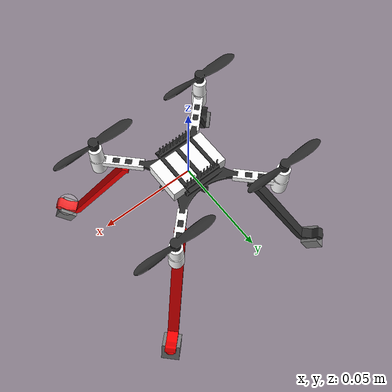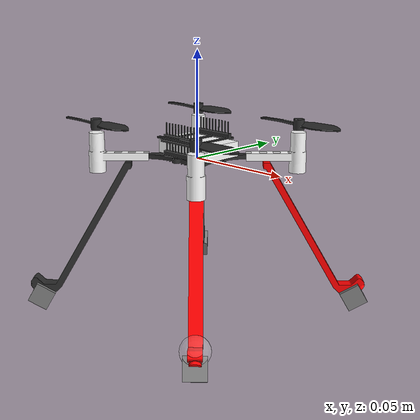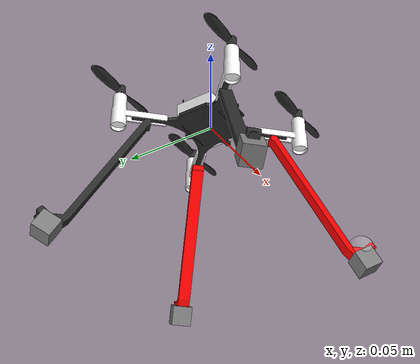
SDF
<?xml version='1.0'?>
<sdf version='1.7'>
  <model name='A30_L70'>

    <include>
      <uri>model://SAR_Base</uri>
    </include>

    <link name='Leg_1'>
      <pose>23.8e-3 -23.8e-3 -1.6e-3 0 1.0472 -0.785</pose>
      <inertial>
        <mass>2.40E-3</mass>
        <pose>5.19E-2 0 1.17E-3 0 0 0 </pose>
        <inertia>
          <ixx>6.73E-8</ixx>
          <ixy>0</ixy>
          <ixz>2.59E-7</ixz>
          <iyy>2.62E-6</iyy>
          <iyz>0</iyz>
          <izz>2.57E-6</izz>
        </inertia>
      </inertial>
      <gravity>1</gravity>
      <self_collide>1</self_collide>
      <visual name='Leg_Visual'>
        <pose>0 0 0 0 0 0</pose>
        <geometry>
          <mesh>
            <uri>model://Leg_Assemblies/meshes/Leg_Assembly_30_deg--70mm--Crazyflie.STL</uri>
            <scale>1 1 1</scale>
          </mesh>
        </geometry>
          <material>
              <!--Red-->
              <ambient>1.0 0.0 0.0 1</ambient>
              <diffuse>1.0 0.0 0.0 1</diffuse>
              <specular>0.1 0.1 0.1 1.0</specular>
          <lighting>1</lighting>
          </material>
      </visual>

      <visual name='Collision_Radius_1'>
        <pose>71.9e-3 0 5.3e-3 0 0 0</pose>
        <geometry>
          <sphere>
            <radius>6.5e-3</radius>
          </sphere>
        </geometry>
        <material>
        <ambient>1 1 1 0.2</ambient>
        <diffuse>1 1 1 0.2</diffuse>
        <lighting>1</lighting>
        </material>
      </visual>

      <collision name="Leg_Collision_1">
        <pose>71.9e-3 0 5.3e-3 0 0 0</pose>
        <geometry>
          <sphere>
            <radius>6.5e-3</radius>
          </sphere>
        </geometry>
      </collision>
      <self_collide>1</self_collide>
    </link>

    <link name='Leg_2'>
      <pose>-23.8e-3 -23.8e-3 -1.6e-3 0 1.0472 -2.35</pose>
      <inertial>
        <mass>2.40E-3</mass>
        <pose>5.19E-2 0 1.17E-3 0 0 0 </pose>
        <inertia>
          <ixx>6.73E-8</ixx>
          <ixy>0</ixy>
          <ixz>2.59E-7</ixz>
          <iyy>2.62E-6</iyy>
          <iyz>0</iyz>
          <izz>2.57E-6</izz>
        </inertia>
      </inertial>
      <gravity>1</gravity>
      <self_collide>1</self_collide>
      <visual name='Leg_Visual'>
        <pose>0 0 0 0 0 0</pose>
        <geometry>
          <mesh>
            <uri>model://Leg_Assemblies/meshes/Leg_Assembly_30_deg--70mm--Crazyflie.STL</uri>
            <scale>1 1 1</scale>
          </mesh>
        </geometry>
          <material>
              <!--DarkGrey-->
              <ambient>0.175 0.175 0.175 1</ambient>
              <diffuse>0.175 0.175 0.175 1</diffuse>
              <specular>0.175 0.175 0.175 1.00</specular>
          <lighting>1</lighting>
          </material>
      </visual>
      <collision name="Leg_Collision_2">
        <pose>71.9e-3 0 5.3e-3 0 0 0</pose>
        <geometry>
          <sphere>
            <radius>6.5e-3</radius>
          </sphere>
        </geometry>
      </collision>
      <self_collide>1</self_collide>
    </link>

    <link name='Leg_3'>
      <pose>-23.8e-3 23.8e-3 -1.6e-3 0 1.0472 2.35</pose>
      <inertial>
        <mass>2.40E-3</mass>
        <pose>5.19E-2 0 1.17E-3 0 0 0 </pose>
        <inertia>
          <ixx>6.73E-8</ixx>
          <ixy>0</ixy>
          <ixz>2.59E-7</ixz>
          <iyy>2.62E-6</iyy>
          <iyz>0</iyz>
          <izz>2.57E-6</izz>
        </inertia>
      </inertial>
      <gravity>1</gravity>
      <self_collide>1</self_collide>
      <visual name='Leg_Visual'>
        <pose>0 0 0 0 0 0</pose>
        <geometry>
          <mesh>
            <uri>model://Leg_Assemblies/meshes/Leg_Assembly_30_deg--70mm--Crazyflie.STL</uri>
            <scale>1 1 1</scale>
          </mesh>
        </geometry>
          <material>
              <!--DarkGrey-->
              <ambient>0.175 0.175 0.175 1</ambient>
              <diffuse>0.175 0.175 0.175 1</diffuse>
              <specular>0.175 0.175 0.175 1.00</specular>
          <lighting>1</lighting>
          </material>
      </visual>
      <collision name="Leg_Collision_3">
        <pose>71.9e-3 0 5.3e-3 0 0 0</pose>
        <geometry>
          <sphere>
            <radius>6.5e-3</radius>
          </sphere>
        </geometry>
      </collision>
      <self_collide>1</self_collide>
    </link>

    <link name='Leg_4'>
      <pose>23.8e-3 23.8e-3 -1.6e-3 0 1.0472 0.785</pose>
      <inertial>
        <mass>2.40E-3</mass>
        <pose>5.19E-2 0 1.17E-3 0 0 0 </pose>
        <inertia>
          <ixx>6.73E-8</ixx>
          <ixy>0</ixy>
          <ixz>2.59E-7</ixz>
          <iyy>2.62E-6</iyy>
          <iyz>0</iyz>
          <izz>2.57E-6</izz>
        </inertia>
      </inertial>
      <gravity>1</gravity>
      <self_collide>1</self_collide>
      <visual name='Leg_Visual'>
        <pose>0 0 0 0 0 0</pose>
        <geometry>
          <mesh>
            <uri>model://Leg_Assemblies/meshes/Leg_Assembly_30_deg--70mm--Crazyflie.STL</uri>
            <scale>1 1 1</scale>
          </mesh>
        </geometry>
          <material>
              <!--Red-->
              <ambient>1.0 0.0 0.0 1</ambient>
              <diffuse>1.0 0.0 0.0 1</diffuse>
              <specular>0.1 0.1 0.1 1.0</specular>
          <lighting>1</lighting>
          </material>
      </visual>
      <collision name="Leg_Collision_4">
        <pose>71.9e-3 0 5.3e-3 0 0 0</pose>
        <geometry>
          <sphere>
            <radius>6.5e-3</radius>
          </sphere>
        </geometry>
      </collision>
      <self_collide>1</self_collide>
    </link>
    <link name="Leg_Tip_1">
      <pose>53.5e-3 -53.5e-3 -68.2e-3 0 1.0472 -0.785</pose>
      <inertial>
        <mass>0.10E-3</mass>
      </inertial>
      <gravity>1</gravity>
      <self_collide>1</self_collide>
      <collision name="Leg_Collision_Tip_1">
        <geometry>
          <box>
            <size>0.01 0.01 0.01</size>
          </box>
        </geometry>
      </collision>
      <visual name="Leg_Tip_Visual_1">
        <geometry>
          <box>
            <size>0.01 0.01 0.01</size>
          </box>
        </geometry>
        <material>
          <ambient>0.5 0.5 0.5 1</ambient>
          <diffuse>0.5 0.5 0.5 1</diffuse>
          <specular>0.5 0.5 0.5 1</specular>
        </material>
      </visual>
      <sensor name='contact_sensor' type='contact'>
          <contact>
              <collision>Leg_Collision_Tip_1</collision>
              <topic>/SAR_Internal/Leg_Connections_1</topic>
          </contact>
          <always_on>1</always_on>
          <update_rate>100</update_rate>
      </sensor>
      <self_collide>1</self_collide>
    </link>

    <link name="Leg_Tip_2">
      <pose>-53.5e-3 -53.5e-3 -68.2e-3 0 1.0472 -2.35</pose>
      <inertial>
        <mass>0.10E-3</mass>
      </inertial>
      <gravity>1</gravity>
      <self_collide>1</self_collide>
      <collision name="Leg_Collision_Tip_2">
        <geometry>
          <box>
            <size>0.01 0.01 0.01</size>
          </box>
        </geometry>
      </collision>
      <visual name="Leg_Tip_Visual_2">
        <geometry>
          <box>
            <size>0.01 0.01 0.01</size>
          </box>
        </geometry>
        <material>
          <ambient>0.5 0.5 0.5 1</ambient>
          <diffuse>0.5 0.5 0.5 1</diffuse>
          <specular>0.5 0.5 0.5 1</specular>
        </material>
      </visual>
      <sensor name='contact_sensor' type='contact'>
          <contact>
              <collision>Leg_Collision_Tip_2</collision>
              <topic>/SAR_Internal/Leg_Connections_2</topic>
          </contact>
          <always_on>1</always_on>
          <update_rate>100</update_rate>
      </sensor>
      <self_collide>1</self_collide>
    </link>

    <link name="Leg_Tip_3">
      <pose>-53.5e-3 53.5e-3 -68.2e-3 0 1.0472 2.35</pose>
      <inertial>
        <mass>0.10E-3</mass>
      </inertial>
      <gravity>1</gravity>
      <self_collide>1</self_collide>
      <collision name="Leg_Collision_Tip_3">
        <geometry>
          <box>
            <size>0.01 0.01 0.01</size>
          </box>
        </geometry>
      </collision>
      <visual name="Leg_Tip_Visual_3">
        <geometry>
          <box>
            <size>0.01 0.01 0.01</size>
          </box>
        </geometry>
        <material>
          <ambient>0.5 0.5 0.5 1</ambient>
          <diffuse>0.5 0.5 0.5 1</diffuse>
          <specular>0.5 0.5 0.5 1</specular>
        </material>
      </visual>
      <sensor name='contact_sensor' type='contact'>
          <contact>
              <collision>Leg_Collision_Tip_3</collision>
              <topic>/SAR_Internal/Leg_Connections_3</topic>
          </contact>
          <always_on>1</always_on>
          <update_rate>100</update_rate>
      </sensor>
      <self_collide>1</self_collide>
    </link>

    <link name="Leg_Tip_4">
      <pose>53.5e-3 53.5e-3 -68.2e-3 0 1.0472 0.785</pose>
      <inertial>
        <mass>0.10E-3</mass>
      </inertial>
      <gravity>1</gravity>
      <self_collide>1</self_collide>
      <collision name="Leg_Collision_Tip_4">
        <geometry>
          <box>
            <size>0.01 0.01 0.01</size>
          </box>
        </geometry>
      </collision>
      <visual name="Leg_Tip_Visual_4">
        <geometry>
          <box>
            <size>0.01 0.01 0.01</size>
          </box>
        </geometry>
        <material>
          <ambient>0.5 0.5 0.5 1</ambient>
          <diffuse>0.5 0.5 0.5 1</diffuse>
          <specular>0.5 0.5 0.5 1</specular>
        </material>
      </visual>

      <sensor name='contact_sensor' type='contact'>
          <contact>
              <collision>Leg_Collision_Tip_4</collision>
              <topic>/SAR_Internal/Leg_Connections_4</topic>
          </contact>
          <always_on>1</always_on>
          <update_rate>100</update_rate>
      </sensor>
      <self_collide>1</self_collide>

    </link>

    <joint name='Hinge_1_Joint' type='universal'>
      <parent>SAR_Base::SAR_Body</parent>
      <child>Leg_1</child>
      <pose>0 0 0 0 0.5236 0</pose>
      <axis>
        <xyz>0 1 0</xyz>
        <limit>
          <lower>-1.0821</lower>
          <upper>0</upper>
        </limit>
        <dynamics>
          <spring_stiffness>0.5</spring_stiffness>
          <damping>0.15</damping>
        </dynamics>
      </axis>
      <axis2>
        <xyz>0 0 1</xyz>
        <limit>
          <lower>-0.3491</lower>
          <upper>0.3491</upper>
        </limit>
        <dynamics>
          <spring_stiffness>0.5</spring_stiffness>
          <damping>0.35</damping>
        </dynamics>
      </axis2>
    </joint>

    <joint name='Hinge_2_Joint' type='universal'>
      <parent>SAR_Base::SAR_Body</parent>
      <child>Leg_2</child>
      <pose>0 0 0 0 0.5236 0</pose>
      <axis>
        <xyz>0 1 0</xyz>
        <limit>
          <lower>-1.0821</lower>
          <upper>0</upper>
        </limit>
        <dynamics>
          <spring_stiffness>0.5</spring_stiffness>
          <damping>0.15</damping>
        </dynamics>
      </axis>
      <axis2>
        <xyz>0 0 1</xyz>
        <limit>
          <lower>-0.3491</lower>
          <upper>0.3491</upper>
        </limit>
        <dynamics>
          <spring_stiffness>0.5</spring_stiffness>
          <damping>0.35</damping>
        </dynamics>
      </axis2>
    </joint>

    <joint name='Hinge_3_Joint' type='universal'>
      <parent>SAR_Base::SAR_Body</parent>
      <child>Leg_3</child>
      <pose>0 0 0 0 0.5236 0</pose>
      <axis>
        <xyz>0 1 0</xyz>
        <limit>
          <lower>-1.0821</lower>
          <upper>0</upper>
        </limit>
        <dynamics>
          <spring_stiffness>0.5</spring_stiffness>
          <damping>0.15</damping>
        </dynamics>
      </axis>
      <axis2>
        <xyz>0 0 1</xyz>
        <limit>
          <lower>-0.3491</lower>
          <upper>0.3491</upper>
        </limit>
        <dynamics>
          <spring_stiffness>0.5</spring_stiffness>
          <damping>0.35</damping>
        </dynamics>
      </axis2>
    </joint>

    <joint name='Hinge_4_Joint' type='universal'>
      <parent>SAR_Base::SAR_Body</parent>
      <child>Leg_4</child>
      <pose>0 0 0 0 0.5236 0</pose>
      <axis>
        <xyz>0 1 0</xyz>
        <limit>
          <lower>-1.0821</lower>
          <upper>0</upper>
        </limit>
        <dynamics>
          <spring_stiffness>0.5</spring_stiffness>
          <damping>0.15</damping>
        </dynamics>
      </axis>
      <axis2>
        <xyz>0 0 1</xyz>
        <limit>
          <lower>-0.3491</lower>
          <upper>0.3491</upper>
        </limit>
        <dynamics>
          <spring_stiffness>0.5</spring_stiffness>
          <damping>0.35</damping>
        </dynamics>
      </axis2>
    </joint>
    <joint name="Leg1_Ball_Joint" type="ball">
      <parent>Leg_1</parent>
      <child>Leg_Tip_1</child>
      <pose>0 0 0 0 0 0</pose>
      <axis>
        <xyz>1 0 0</xyz>
        <limit>
          <lower>-1e16</lower>
          <upper>1e16</upper>
        </limit>
        <dynamics>
          <damping>0.01</damping>
        </dynamics>
      </axis>
    </joint>

    <joint name="Leg2_Ball_Joint" type="ball">
      <parent>Leg_2</parent>
      <child>Leg_Tip_2</child>
      <pose>0 0 0 0 0 0</pose>
      <axis>
        <xyz>1 0 0</xyz>
        <limit>
          <lower>-1e16</lower>
          <upper>1e16</upper>
        </limit>
        <dynamics>
          <damping>0.01</damping>
        </dynamics>
      </axis>
    </joint>

    <joint name="Leg3_Ball_Joint" type="ball">
      <parent>Leg_3</parent>
      <child>Leg_Tip_3</child>
      <pose>0 0 0 0 0 0</pose>
      <axis>
        <xyz>1 0 0</xyz>
        <limit>
          <lower>-1e16</lower>
          <upper>1e16</upper>
        </limit>
        <dynamics>
          <damping>0.01</damping>
        </dynamics>
      </axis>
    </joint>

    <joint name="Leg4_Ball_Joint" type="ball">
      <parent>Leg_4</parent>
      <child>Leg_Tip_4</child>
      <pose>0 0 0 0 0 0</pose>
      <axis>
        <xyz>1 0 0</xyz>
        <limit>
          <lower>-1e16</lower>
          <upper>1e16</upper>
        </limit>
        <dynamics>
          <damping>0.01</damping>
        </dynamics>
      </axis>
    </joint>

    <plugin
        filename="/home/dlee/ros2_ws/install/sar_gazebo/lib/libSticky_Leg_Plugin.so"
        name="gz::sim::systems::Sticky_Leg_Plugin">
      <LegNumber>1</LegNumber>
      <LinkName>Leg_Tip_1</LinkName>
      <CollisionName>Leg_Collision_1</CollisionName>
      <JointName>Leg_1_Contact_Joint</JointName>

      <child_model>A30_L25</child_model>
      <child_link>Leg_Tip_1</child_link>
    </plugin>

    <plugin
        filename="/home/dlee/ros2_ws/install/sar_gazebo/lib/libSticky_Leg_Plugin.so"
        name="gz::sim::systems::Sticky_Leg_Plugin">
      <LegNumber>2</LegNumber>
      <LinkName>Leg_Tip_2</LinkName>
      <CollisionName>Leg_Collision_2</CollisionName>
      <JointName>Leg_2_Contact_Joint</JointName>

      <child_model>A30_L25</child_model>
      <child_link>Leg_Tip_2</child_link>
    </plugin>

    <plugin
        filename="/home/dlee/ros2_ws/install/sar_gazebo/lib/libSticky_Leg_Plugin.so"
        name="gz::sim::systems::Sticky_Leg_Plugin">
      <LegNumber>3</LegNumber>
      <LinkName>Leg_Tip_3</LinkName>
      <CollisionName>Leg_Collision_3</CollisionName>
      <JointName>Leg_3_Contact_Joint</JointName>

      <child_model>A30_L25</child_model>
      <child_link>Leg_Tip_3</child_link>
    </plugin>

    <plugin
        filename="/home/dlee/ros2_ws/install/sar_gazebo/lib/libSticky_Leg_Plugin.so"
        name="gz::sim::systems::Sticky_Leg_Plugin">
      <LegNumber>4</LegNumber>
      <LinkName>Leg_Tip_4</LinkName>
      <CollisionName>Leg_Collision4</CollisionName>
      <JointName>Leg_4_Contact_Joint</JointName>

      <child_model>A30_L70</child_model>
      <child_link>Leg_Tip_4</child_link>
    </plugin>

    <static>0</static>
    <allow_auto_disable>1</allow_auto_disable>
  </model>
</sdf>

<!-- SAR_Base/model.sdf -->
<sdf version='1.7'>
  <model name='SAR_Base' canonical_link='SAR_Body'>
    <pose>0 0 0 0 0 0</pose>   <!--the pose is relative to the world by default-->

    <!--SAR_Body-->
    <link name='SAR_Body'>
        <pose>0 0 0 0 0 0</pose>
        <inertial> <!--inertial properties of the link mass, inertia matix-->
            <mass>37.0e-3</mass>
            <inertia>
                <ixx>17.20e-6</ixx>
                <ixy>0</ixy>
                <ixz>0</ixz>
                <iyy>17.70e-6</iyy>
                <iyz>0</iyz>
                <izz>34.20e-6</izz>
            </inertia>
            <pose>0 0 0 0 0 0</pose>
        </inertial>
        <pose>0 0 0 0 0 0</pose>
        <gravity>1</gravity>
        <self_collide>0</self_collide>
        <kinematic>0</kinematic>
        <enable_wind>0</enable_wind>

        <sensor name="imu" type="imu">
        <always_on>1</always_on>
        <update_rate>100</update_rate>
        <visualize>true</visualize>
        <topic>imu</topic>
        <enable_metrics>true</enable_metrics>
        </sensor>

        <visual name='Crazyflie_Base_Assembly'>
            <pose>0 0 0 0 0 0</pose>
            <geometry>
            <mesh>
                <uri>model://SAR_Base/meshes/Crazyflie_Base_Body.STL</uri>
                <scale>1 1 1</scale>
            </mesh>
            </geometry>
            <material>
                <!--DarkGrey-->
                <ambient>0.175 0.175 0.175 1</ambient>
                <diffuse>0.175 0.175 0.175 1</diffuse>
                <specular>0.175 0.175 0.175 1.00</specular>
            <lighting>1</lighting>
            </material>
        </visual>

        <visual name='Crazyflie_Motor_Arms'>
            <pose>0 0 0 0 0 0</pose>
            <geometry>
            <mesh>
                <uri>model://SAR_Base/meshes/Crazyflie_Motor_Arms.STL</uri>
                <scale>1 1 1</scale>
            </mesh>
            </geometry>
            <material>
                <!--White-->
                <ambient>1 1 1 1</ambient>
                <diffuse>1 1 1 1</diffuse>
                <specular>0.1 0.1 0.1 0.128</specular>
            <lighting>1</lighting>
            </material>
        </visual>

        <collision name='Body_Collision_Prop_1'>
            <pose>33.0e-3 -33.0e-3 9.25e-3 0 0 0</pose>
            <geometry>
            <cylinder>
                <length>18.5e-3</length>
                <radius>23.0e-3</radius>
            </cylinder>
            </geometry>
        </collision>

        <collision name='Body_Collision_Prop_2'>
            <pose>-33.0e-3 -33.0e-3 9.25e-3 0 0 0</pose>
            <geometry>
            <cylinder>
                <length>18.5e-3</length>
                <radius>23.0e-3</radius>
            </cylinder>
            </geometry>
        </collision>

        <collision name='Body_Collision_Prop_3'>
            <pose>-33.0e-3 33.0e-3 9.25e-3 0 0 0</pose>
            <geometry>
            <cylinder>
                <length>18.5e-3</length>
                <radius>23.0e-3</radius>
            </cylinder>
            </geometry>
        </collision>

        <collision name='Body_Collision_Prop_4'>
            <pose>33.0e-3 33.0e-3 9.25e-3 0 0 0</pose>
            <geometry>
            <cylinder>
                <length>18.5e-3</length>
                <radius>23.0e-3</radius>
            </cylinder>
            </geometry>
        </collision>

    </link>

    <link name='Prop_1'>
        <inertial>
            <mass>1e-6</mass>
            <inertia>
                <ixx>1e-6</ixx>
                <ixy>0</ixy>
                <ixz>0</ixz>
                <iyy>1e-6</iyy>
                <iyz>0</iyz>
                <izz>1e-6</izz>
            </inertia>
            <pose>0 0 0 0 0 0</pose>
        </inertial>
        <pose>33.0e-3 -33.0e-3 16.0e-3 0 0 0</pose>
        <gravity>1</gravity>
        <self_collide>0</self_collide>
        <visual name='Crazyflie_Propeller_1'>
            <pose>0 0 0 0 0 0</pose>
            <geometry>
                <mesh>
                    <uri>model://SAR_Base/meshes/Crazyflie_Propeller.STL</uri>
                    <scale>1 1 1</scale>
                </mesh>
            </geometry>
            <material>
                <!--DarkGrey-->
                <ambient>0.175 0.175 0.175 1</ambient>
                <diffuse>0.175 0.175 0.175 1</diffuse>
                <specular>0.175 0.175 0.175 1.00</specular>
            <lighting>1</lighting>
            </material>
        </visual>
    </link>

    <link name='Prop_2'>
        <inertial>
            <mass>1e-6</mass>
            <inertia>
                <ixx>1e-6</ixx>
                <ixy>0</ixy>
                <ixz>0</ixz>
                <iyy>1e-6</iyy>
                <iyz>0</iyz>
                <izz>1e-6</izz>
            </inertia>
            <pose>0 0 0 0 0 0</pose>
        </inertial>
        <pose>-33.0e-3 -33.0e-3 16.0e-3 0 0 0</pose>
        <gravity>1</gravity>
        <self_collide>0</self_collide>
        <visual name='Crazyflie_Propeller_2'>
            <pose>0 0 0 0 0 0</pose>
            <geometry>
                <mesh>
                    <uri>model://SAR_Base/meshes/Crazyflie_Propeller.STL</uri>
                    <scale>1 1 1</scale>
                </mesh>
            </geometry>
            <material>
                <!--DarkGrey-->
                <ambient>0.175 0.175 0.175 1</ambient>
                <diffuse>0.175 0.175 0.175 1</diffuse>
                <specular>0.175 0.175 0.175 1.00</specular>
            <lighting>1</lighting>
            </material>
        </visual>
    </link>

    <link name='Prop_3'>
    <inertial>
        <mass>1e-6</mass>
        <inertia>
            <ixx>1e-6</ixx>
            <ixy>0</ixy>
            <ixz>0</ixz>
            <iyy>1e-6</iyy>
            <iyz>0</iyz>
            <izz>1e-6</izz>
        </inertia>
        <pose>0 0 0 0 0 0</pose>
    </inertial>
    <pose>-33.0e-3 33.0e-3 16.0e-3 0 0 0</pose>
    <gravity>1</gravity>
    <self_collide>0</self_collide>
        <visual name='Crazyflie_Propeller_3'>
            <pose>0 0 0 0 0 0</pose>
            <geometry>
            <mesh>
                <uri>model://SAR_Base/meshes/Crazyflie_Propeller.STL</uri>
                <scale>1 1 1</scale>
            </mesh>
            </geometry>
                <material>
                    <!--DarkGrey-->
                    <ambient>0.175 0.175 0.175 1</ambient>
                    <diffuse>0.175 0.175 0.175 1</diffuse>
                    <specular>0.175 0.175 0.175 1.00</specular>
                <lighting>1</lighting>
                </material>
        </visual>
    </link>

    <link name='Prop_4'>
    <inertial>
        <mass>1e-6</mass>
        <inertia>
            <ixx>1e-6</ixx>
            <ixy>0</ixy>
            <ixz>0</ixz>
            <iyy>1e-6</iyy>
            <iyz>0</iyz>
            <izz>1e-6</izz>
        </inertia>
        <pose>0 0 0 0 0 0</pose>
    </inertial>
    <pose>33.0e-3 33.0e-3 16.0e-3 0 0 0</pose>
    <gravity>1</gravity>
    <self_collide>0</self_collide>
        <visual name='Crazyflie_Propeller_4'>
            <pose>0 0 0 0 0 0</pose>
            <geometry>
                <mesh>
                    <uri>model://SAR_Base/meshes/Crazyflie_Propeller.STL</uri>
                    <scale>1 1 1</scale>
                </mesh>
            </geometry>
                <material>
                    <!--DarkGrey-->
                    <ambient>0.175 0.175 0.175 1</ambient>
                    <diffuse>0.175 0.175 0.175 1</diffuse>
                    <specular>0.175 0.175 0.175 1.00</specular>
                <lighting>1</lighting>
                </material>
        </visual>
    </link>

    <joint name='Prop_1_Joint' type='revolute'>
        <pose relative_to='Prop_1'/>
        <parent>SAR_Body</parent>
        <child>Prop_1</child>
        <axis>
            <xyz expressed_in='__model__'>0 0 1</xyz>
            <limit>
                <lower>-1.79769e+308</lower> <!--negative infinity-->
                <upper>1.79769e+308</upper> <!--positive infinity-->
                <effort>-1</effort>
                <velocity>-1</velocity>
            </limit>
            <dynamics>
                <spring_reference>0</spring_reference>
                <spring_stiffness>0</spring_stiffness>
            </dynamics>
        </axis>
    </joint>

    <joint name='Prop_2_Joint' type='revolute'>
        <pose relative_to='Prop_2'/>
        <parent>SAR_Body</parent>
        <child>Prop_2</child>
        <axis>
            <xyz expressed_in='__model__'>0 0 1</xyz>
            <limit>
                <lower>-1.79769e+308</lower>
                <upper>1.79769e+308</upper>
                <effort>-1</effort>
                <velocity>-1</velocity>
            </limit>
            <dynamics>
                <spring_reference>0</spring_reference>
                <spring_stiffness>0</spring_stiffness>
            </dynamics>
        </axis>
    </joint>

    <joint name='Prop_3_Joint' type='revolute'>
        <pose relative_to='Prop_3'/>
        <parent>SAR_Body</parent>
        <child>Prop_3</child>
        <axis>
            <xyz expressed_in='__model__'>0 0 1</xyz>
            <limit>
                <lower>-1.79769e+308</lower>
                <upper>1.79769e+308</upper>
                <effort>-1</effort>
                <velocity>-1</velocity>
            </limit>
            <dynamics>
                <spring_reference>0</spring_reference>
                <spring_stiffness>0</spring_stiffness>
            </dynamics>
        </axis>
    </joint>

    <joint name='Prop_4_Joint' type='revolute'>
        <pose relative_to='Prop_4'/>
        <parent>SAR_Body</parent>t
        <child>Prop_4</child>
        <axis>
            <xyz expressed_in='__model__'>0 0 1</xyz>
            <limit>
                <lower>-1.79769e+308</lower>
                <upper>1.79769e+308</upper>
                <effort>-1</effort>
                <velocity>-1</velocity>
            </limit>
            <dynamics>
                <spring_reference>0</spring_reference>
                <spring_stiffness>0</spring_stiffness>
            </dynamics>
        </axis>
    </joint>

    <plugin
        filename="/home/dlee/ros2_ws/install/sar_gazebo/lib/libImu_Plugin.so"
        name="gz::sim::systems::Imu_Plugin">
    </plugin>

    <plugin
        filename="/home/dlee/ros2_ws/install/sar_gazebo/lib/libVicon_Plugin.so"
        name="gz::sim::systems::Vicon_Plugin">
        <link_name>SAR_Body</link_name>
    </plugin>
    <plugin
        filename="/home/dlee/ros2_ws/install/sar_gazebo/lib/libMotor_Plugin.so"
        name="gz::sim::systems::Motor_Plugin">
        <Motor_Number>1</Motor_Number>
        <joint_name>Prop_1_Joint</joint_name>
        <link_name>Prop_1</link_name>
        <canonicallink_name>SAR_Body</canonicallink_name>
        <Turning_Direction>ccw</Turning_Direction>
        <Visual_Slowdown>200</Visual_Slowdown>
    </plugin>

    <plugin
        filename="/home/dlee/ros2_ws/install/sar_gazebo/lib/libMotor_Plugin.so"
        name="gz::sim::systems::Motor_Plugin">
        <Motor_Number>2</Motor_Number>
        <joint_name>Prop_2_Joint</joint_name>
        <link_name>Prop_2</link_name>
        <canonicallink_name>SAR_Body</canonicallink_name>
        <Turning_Direction>cw</Turning_Direction>
        <Visual_Slowdown>200</Visual_Slowdown>
    </plugin>

    <plugin
        filename="/home/dlee/ros2_ws/install/sar_gazebo/lib/libMotor_Plugin.so"
        name="gz::sim::systems::Motor_Plugin">
        <Motor_Number>3</Motor_Number>
        <joint_name>Prop_3_Joint</joint_name>
        <link_name>Prop_3</link_name>
        <canonicallink_name>SAR_Body</canonicallink_name>
        <Turning_Direction>ccw</Turning_Direction>
        <Visual_Slowdown>200</Visual_Slowdown>
    </plugin>

    <plugin
        filename="/home/dlee/ros2_ws/install/sar_gazebo/lib/libMotor_Plugin.so"
        name="gz::sim::systems::Motor_Plugin">
        <Motor_Number>4</Motor_Number>
        <joint_name>Prop_4_Joint</joint_name>
        <link_name>Prop_4</link_name>
        <canonicallink_name>SAR_Body</canonicallink_name>
        <Turning_Direction>cw</Turning_Direction>
        <Visual_Slowdown>200</Visual_Slowdown>
    </plugin>

    <static>0</static>
    <allow_auto_disable>1</allow_auto_disable>
  </model>
</sdf>
